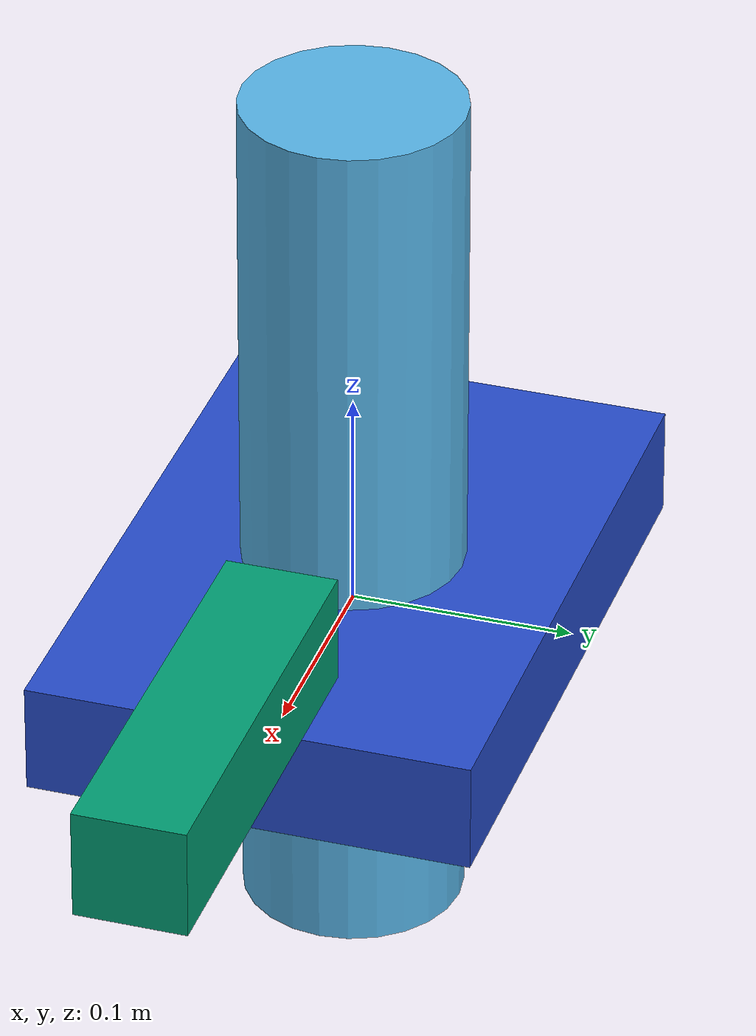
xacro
<?xml version="1.0"?>
<robot xmlns:xacro="http://www.ros.org/wiki/xacro" name="simple_bot">

  <!-- base_link -->
  <link name="base_link">
    <visual>
      <geometry>
        <box size="0.3 0.2 0.05"/>
      </geometry>
      <material name="blue"/>
    </visual>
  </link>

  <!-- joint1 and link1 -->
  <link name="link1">
    <visual>
      <geometry>
        <cylinder length="0.4" radius="0.05"/>
      </geometry>
    </visual>
  </link>

  <joint name="joint1" type="revolute">
    <parent link="base_link"/>
    <child  link="link1"/>
    <origin xyz="0 0 0.05" rpy="0 0 0"/>
    <axis xyz="0 0 1"/>
    <limit effort="1.0" velocity="1.0" lower="-1.57" upper="1.57"/>
  </joint>

  <!-- link2 -->
  <link name="link2">
    <visual>
      <geometry>
        <box size="0.2 0.05 0.05"/>
      </geometry>
    </visual>
  </link>

  <joint name="joint2" type="revolute">
    <parent link="link1"/>
    <child  link="link2"/>
    <origin xyz="0.2 0 0" rpy="0 0 0"/>
    <axis xyz="0 1 0"/>
    <limit effort="1.0" velocity="1.0" lower="-1.57" upper="1.57"/>
  </joint>

</robot>
